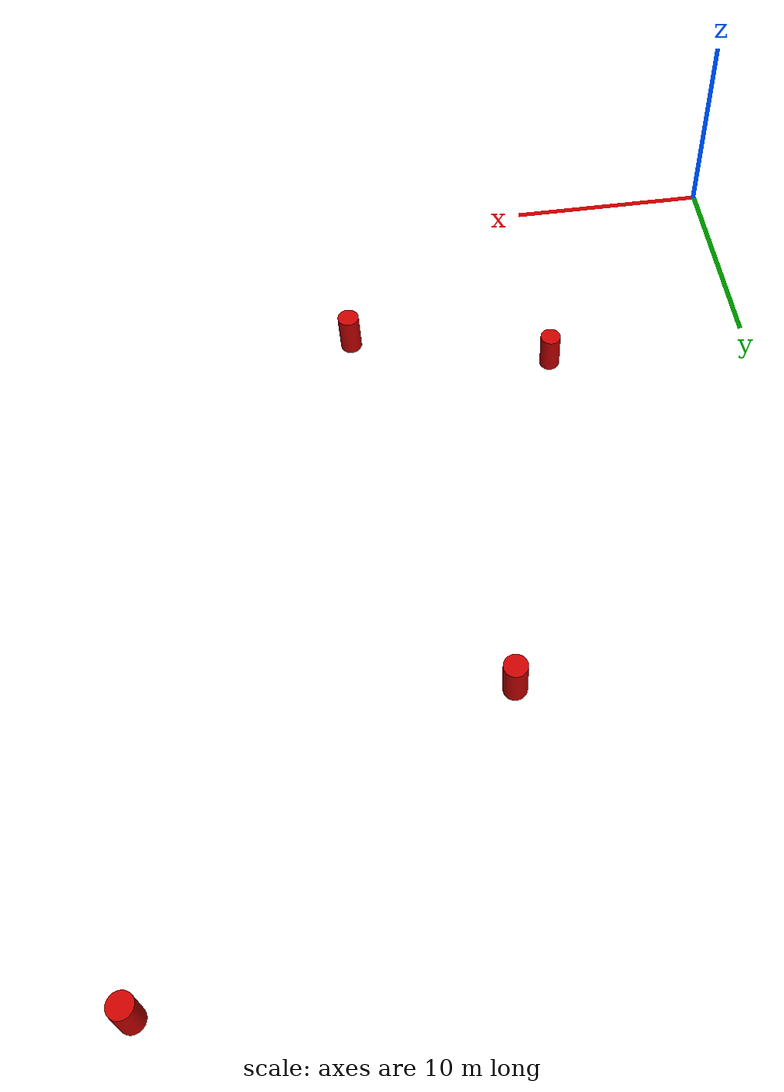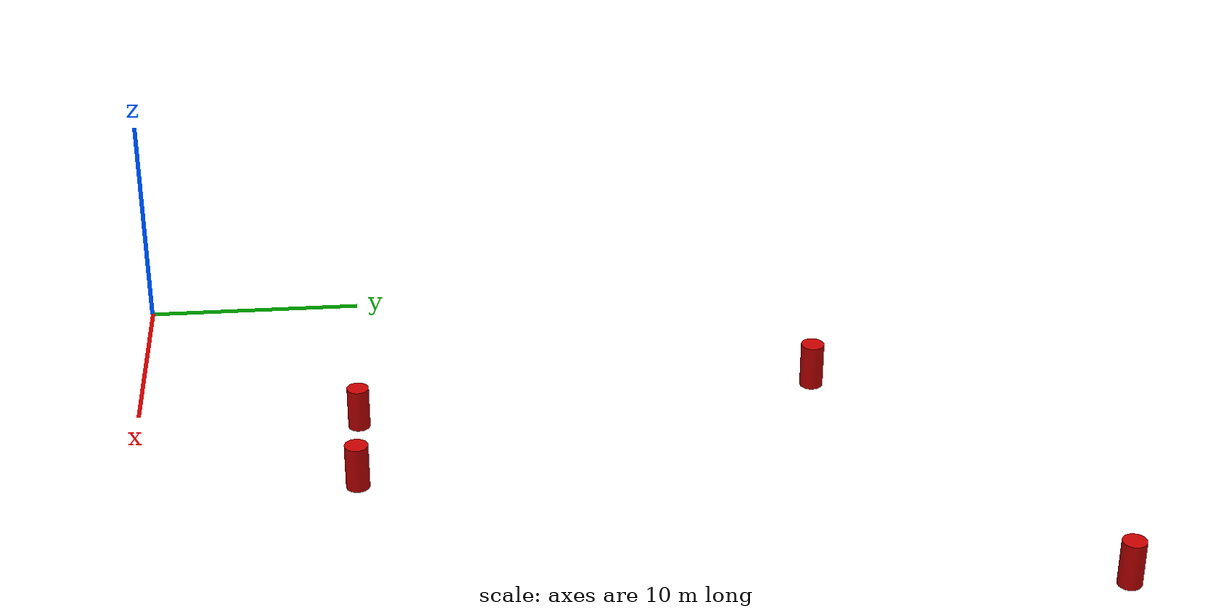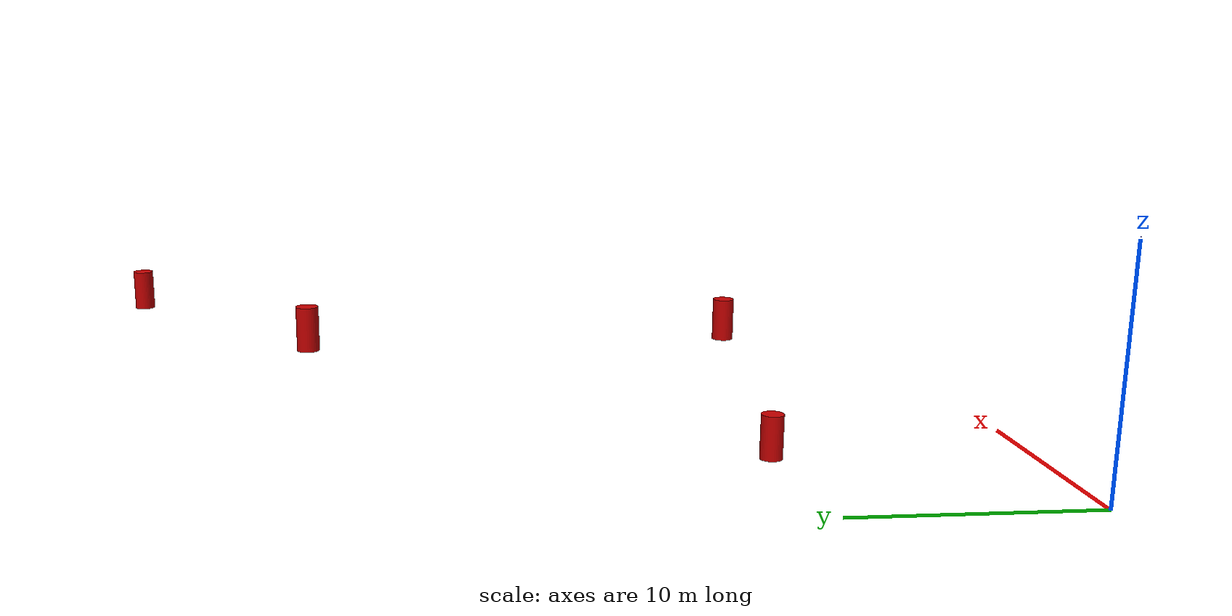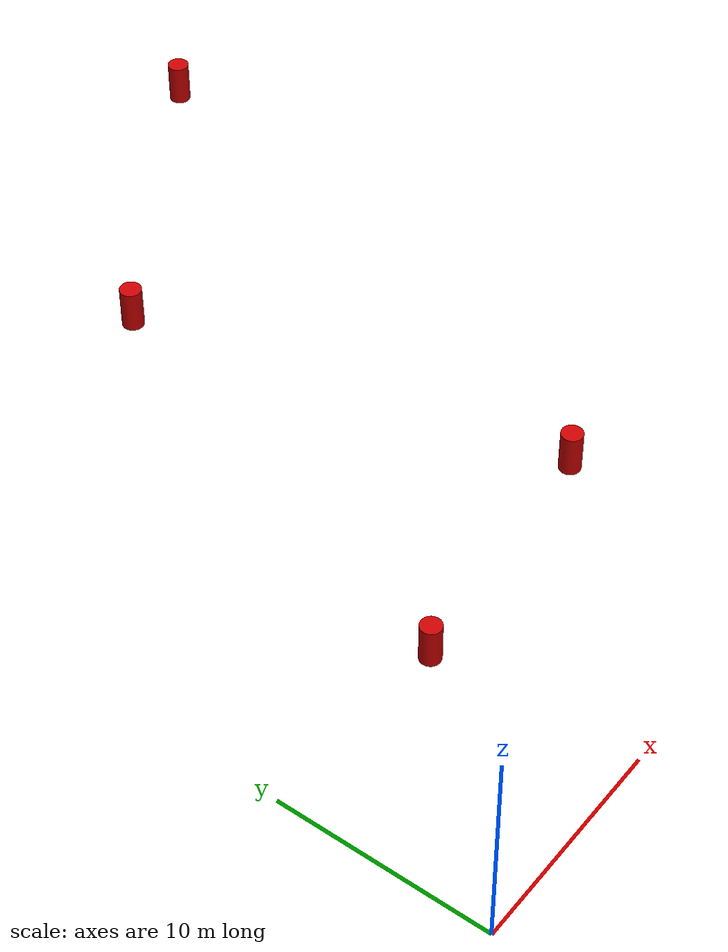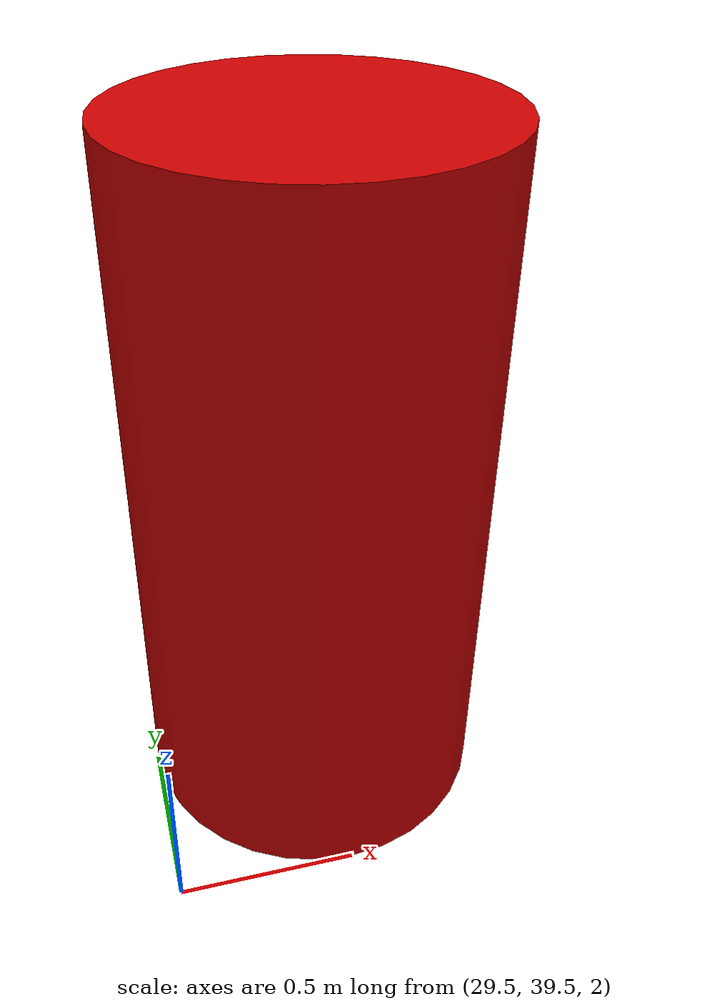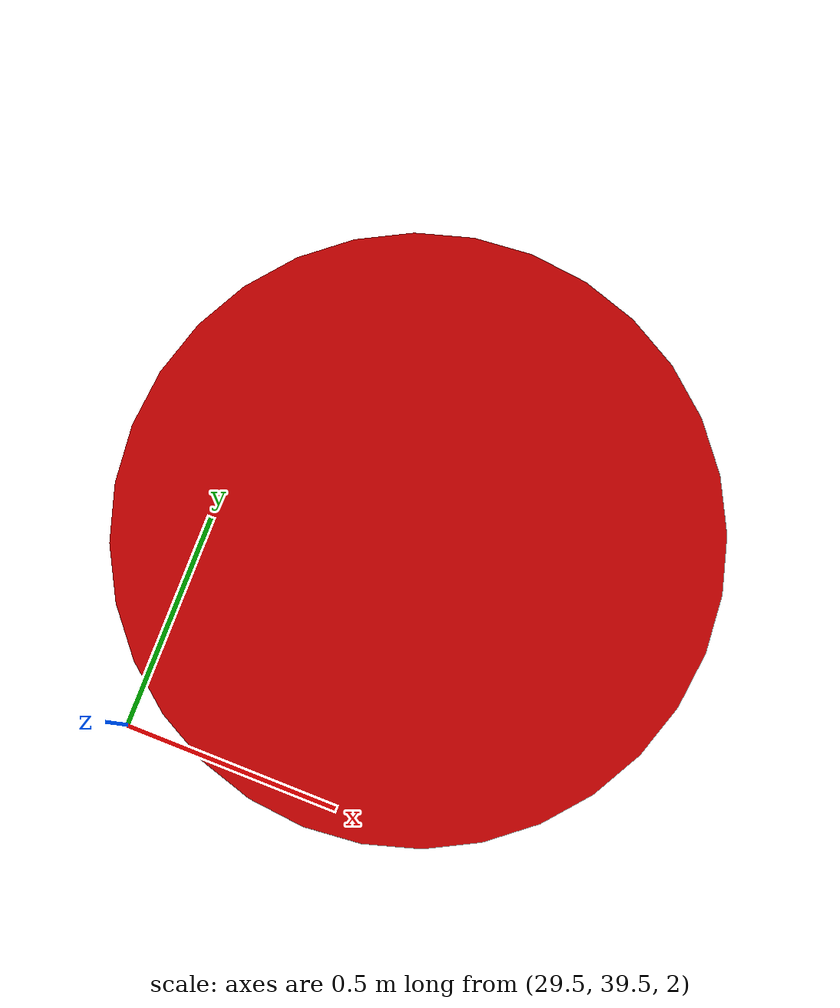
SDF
<sdf version="1.9">
 <world name="iris_runway">
  <physics name="1ms" type="ignore">
   <max_step_size>0.001</max_step_size>
   <real_time_factor>1.0</real_time_factor>
  </physics>
  <plugin filename="gz-sim-physics-system" name="gz::sim::systems::Physics"/>
  <plugin filename="gz-sim-sensors-system" name="gz::sim::systems::Sensors">
   <render_engine>ogre2</render_engine>
  </plugin>
  <plugin filename="gz-sim-user-commands-system" name="gz::sim::systems::UserCommands"/>
  <plugin filename="gz-sim-scene-broadcaster-system" name="gz::sim::systems::SceneBroadcaster"/>
  <plugin filename="gz-sim-imu-system" name="gz::sim::systems::Imu"/>
  <plugin filename="gz-sim-navsat-system" name="gz::sim::systems::NavSat"/>
  <scene><ambient>1.0 1.0 1.0</ambient><background>0.8 0.8 0.8</background></scene>
  <spherical_coordinates>
   <latitude_deg>-35.363262</latitude_deg>
   <longitude_deg>149.165237</longitude_deg>
   <elevation>584</elevation>
   <heading_deg>0</heading_deg>
   <surface_model>EARTH_WGS84</surface_model>
  </spherical_coordinates>
  <light type="directional" name="sun">
   <pose>0 0 10 0 0 0</pose>
   <diffuse>0.8 0.8 0.8 1</diffuse>
   <specular>0.8 0.8 0.8 1</specular>
   <attenuation>
    <range>1000</range>
    <constant>0.9</constant>
    <linear>0.01</linear>
    <quadratic>0.001</quadratic>
   </attenuation>
   <direction>-0.5 0.1 -0.9</direction>
  </light>
  <model name="axes">
   <static>1</static>
   <link name="link">
    <visual name="r">
     <cast_shadows>0</cast_shadows>
     <pose>5 0 0.1 0 0 0</pose>
     <geometry><box><size>10 0.01 0.01</size></box></geometry>
     <material>
      <ambient>1 0 0 0.8</ambient>
      <diffuse>1 0 0 0.8</diffuse>
      <emissive>1 0 0 0.8</emissive>
      <specular>0.5 0.5 0.5 0.8</specular>
     </material>
    </visual>
    <visual name="g">
     <cast_shadows>0</cast_shadows>
     <pose>0 5 0.1 0 0 0</pose>
     <geometry><box><size>0.01 10 0.01</size></box></geometry>
     <material>
      <ambient>0 1 0 0.8</ambient>
      <diffuse>0 1 0 0.8</diffuse>
      <emissive>0 1 0 0.8</emissive>
      <specular>0.5 0.5 0.5 0.8</specular>
     </material>
    </visual>
    <visual name="b">
     <cast_shadows>0</cast_shadows>
     <pose>0 0 5.1 0 0 0</pose>
     <geometry><box><size>0.01 0.01 10</size></box></geometry>
     <material>
      <ambient>0 0 1 0.8</ambient>
      <diffuse>0 0 1 0.8</diffuse>
      <emissive>0 0 1 0.8</emissive>
      <specular>0.5 0.5 0.5 0.8</specular>
     </material>
    </visual>
    <sensor name="navsat_sensor" type="navsat"><always_on>1</always_on><update_rate>1</update_rate></sensor>
   </link>
  </model>
  <include><uri>model://dummies/white_dummy</uri><pose degrees="true">10 10 0 0 0  90</pose></include>
  <include><uri>model://dummies/black_dummy</uri><pose degrees="true">15 30 4 0 0  0</pose></include>
  <include><uri>model://dummies/red_dummy</uri><pose degrees="true">20 10 3 0 0  0</pose></include>
  <include><uri>model://dummies/blue_dummy</uri><pose degrees="true">30 40 3 0 0  0</pose></include>
 </world>
</sdf>

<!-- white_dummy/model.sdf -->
<sdf version="1.6">
  <model name="white_dummy">
    <static>true</static>
    <link name="link">
      <visual name="visual">
        <geometry>
          <mesh>
            <uri>model://dummies/white_dummy/meshes/red_dummy.dae</uri>
          <scale>0.5 0.5 1</scale></mesh>
        </geometry>
      </visual>
    </link>
  </model>
</sdf>

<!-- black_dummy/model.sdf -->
<sdf version="1.6">
  <model name="black_dummy">
    <static>true</static>
    <link name="link">
      <visual name="visual">
        <geometry>
          <mesh>
            <uri>model://dummies/black_dummy/meshes/red_dummy.dae</uri>
          <scale>0.5 0.5 1</scale></mesh>

        </geometry>
      </visual>
    </link>
  </model>
</sdf>

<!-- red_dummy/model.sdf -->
<sdf version="1.6">
  <model name="red_dummy">
    <static>true</static>
    <link name="link">
      <visual name="visual">
        <geometry>
          <mesh>
            <uri>model://dummies/red_dummy/meshes/red_dummy.dae</uri>
          <scale>0.5 0.5 1</scale></mesh>

        </geometry>
      </visual>
    </link>
  </model>
</sdf>

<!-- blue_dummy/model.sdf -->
<sdf version="1.6">
  <model name="blue_dummy">
    <static>true</static>
    <link name="link">
      <visual name="visual">
        <geometry>
          <mesh>
            <uri>model://dummies/blue_dummy/meshes/red_dummy.dae</uri>
            <scale>0.5 0.5 1</scale>
                      </mesh>

        </geometry>
      </visual>
    </link>
  </model>
</sdf>
